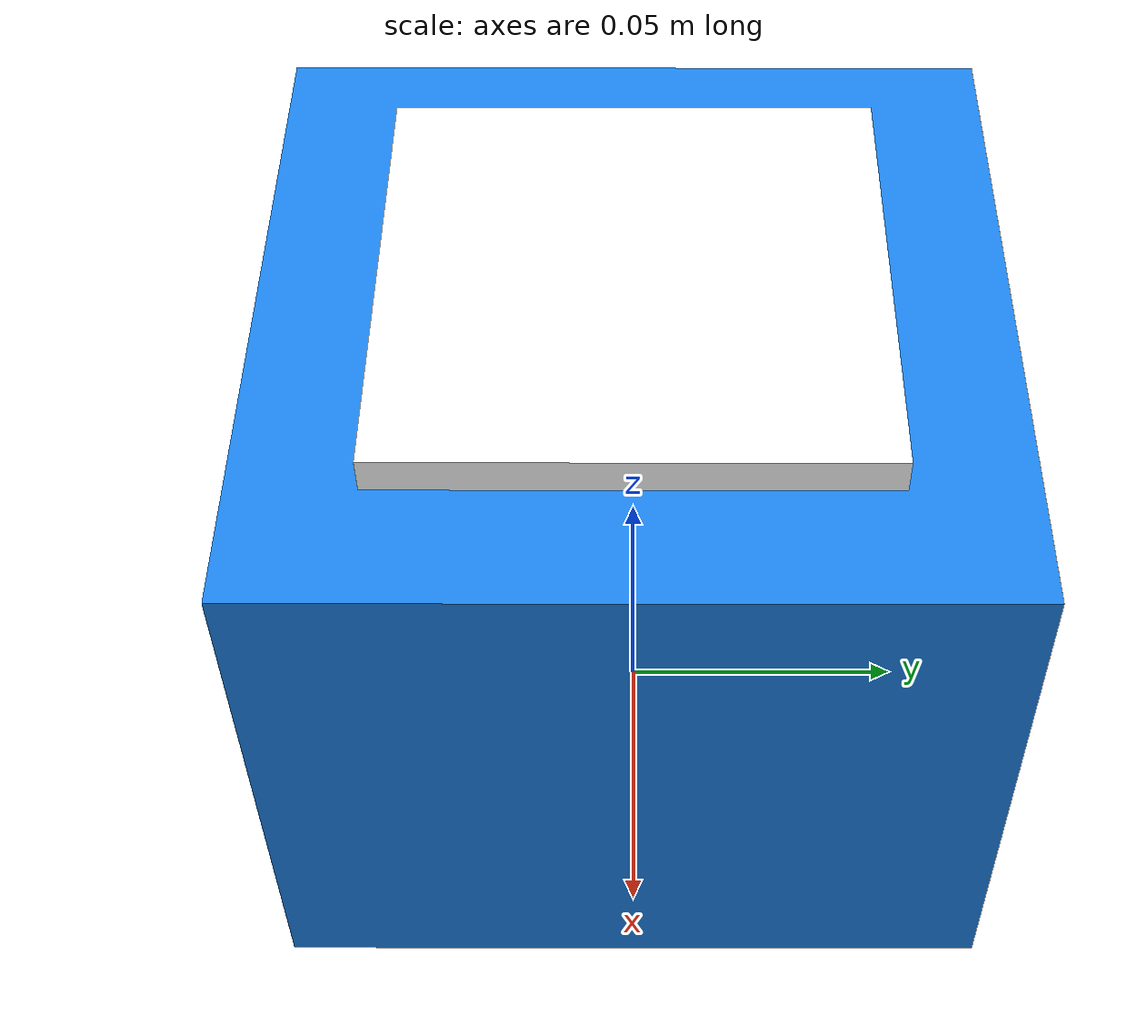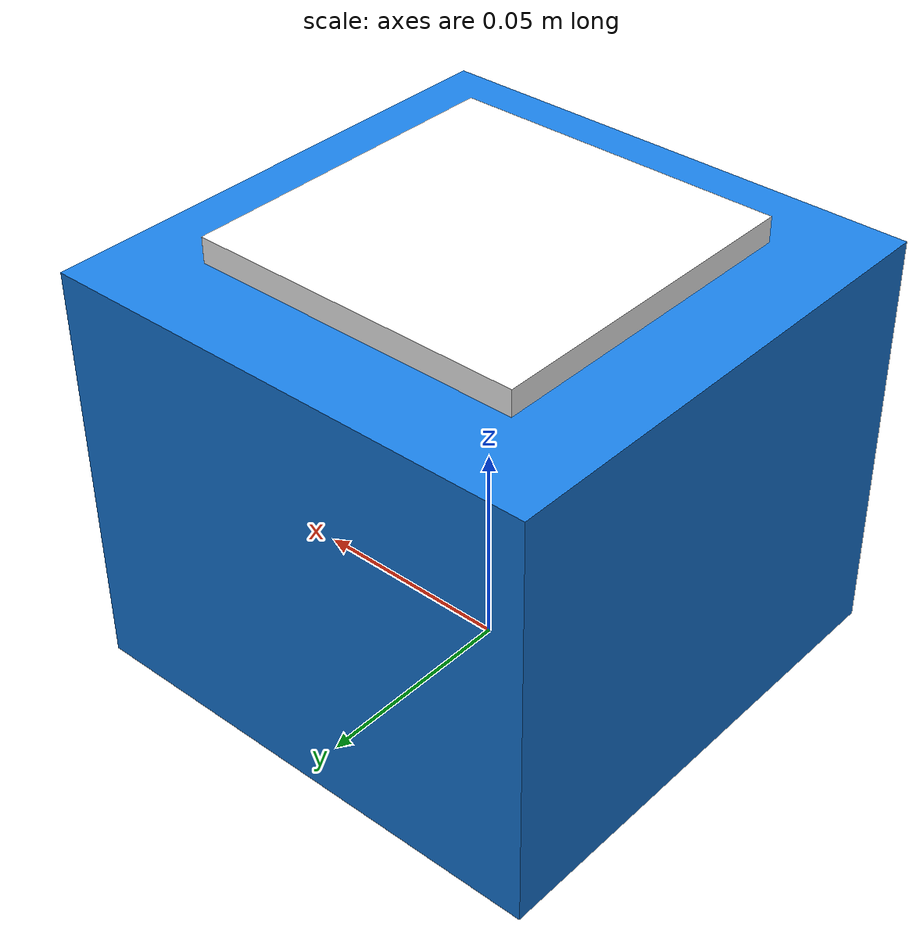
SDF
<?xml version="1.0" ?>
<sdf version="1.9">
  <model name="apriltag_column_3">
    <static>true</static>
    <link name="link">
      <collision name="pillar_col"><pose>0 0 0.05 0 0 0</pose>
        <geometry><box><size>0.12 0.12 0.10</size></box></geometry></collision>
      <visual name="pillar_vis"><pose>0 0 0.05 0 0 0</pose>
        <geometry><box><size>0.12 0.12 0.10</size></box></geometry>
        <material><ambient>0.1 0.5 0.9 1</ambient><diffuse>0.1 0.5 0.9 1</diffuse><specular>0.2 0.2 0.2 1</specular></material></visual>
      <visual name="tag_vis"><pose>0 0 0.104 0 0 0</pose>
        <geometry><box><size>0.08 0.08 0.006</size></box></geometry>
        <material><diffuse>1 1 1 1</diffuse>
          <pbr><metal><albedo_map>tag36h11_2.png</albedo_map><metalness>0</metalness><roughness>1</roughness></metal></pbr>
        </material></visual>
    </link>
  </model>
</sdf>
